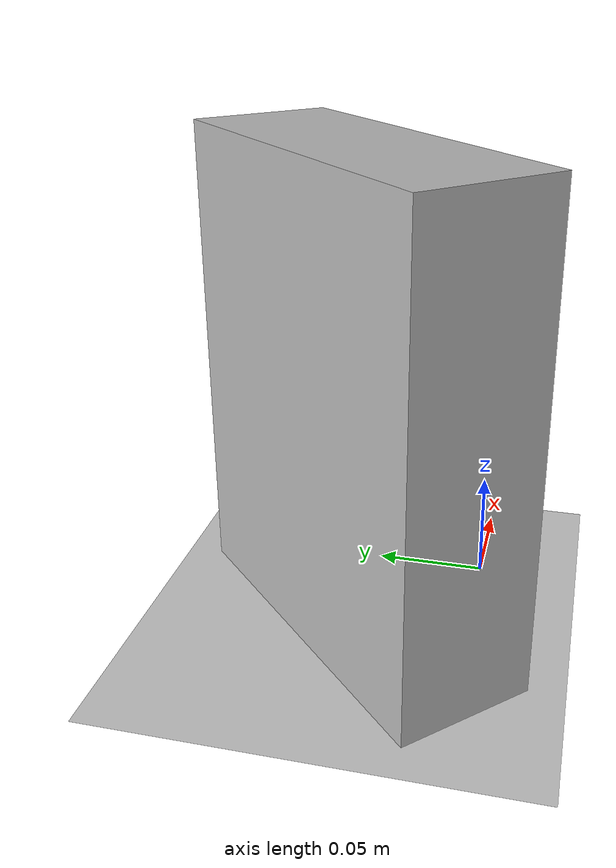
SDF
<?xml version="1.0" ?>
<sdf version="1.6">
    <world name="default">
        <gui>
            <camera name='user_camera'>
                <pose frame=''>0 0 1.02 0 1.5707 1.5707</pose>
                <projection_type>orthographic</projection_type>
            </camera>
        </gui>
        <include>
            <uri>model://ground_plane</uri>
        </include>
        <include>
            <uri>model://sun</uri>
        </include>
        <include>
            <uri>model://cheezits</uri>
            <pose>-0.05 0.05 0 0 0 0.785</pose>
            <name>cheezits_box</name>
        </include>
        <plugin name="collision_map_plugin" filename="libcollision_map_plugin.so"/>
        <physics name="ode" type="ode">
            <real_time_update_rate>1000</real_time_update_rate>
            <ode>
                <solver>
                    <type>quick</type>
                </solver>
                <constraints>
                    <contact_surface_layer>0.002</contact_surface_layer>
                </constraints>
            </ode>
        </physics>
    </world>
</sdf>

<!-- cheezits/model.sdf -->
<sdf version="1.4">
  <model name="cheezits">
    <link name="link_1">
      <pose>0 0 0.10795 0 0 0</pose>
      <gravity>true</gravity>
      <inertial>
        <pose>0 0 0 0 0 0</pose>
        <inertia>
          <ixx>0.42204216666666666</ixx>
          <ixy>0</ixy>
          <ixz>0</ixz>
          <iyy>0.6155901666666667</iyy>
          <iyz>0</iyz>
          <izz>0.2607521666666666</izz>
        </inertia>
        <mass>100</mass>
      </inertial>
      <visual name="visual">
        <cast_shadows>0</cast_shadows>
        <geometry>
          <box>
            <size>0.1651 0.0635 0.2159</size>
          </box>
        </geometry>
      </visual>
      <collision name="box_collision">
        <geometry>
          <box>
            <size>0.1651 0.0635 0.2159</size>
          </box>
        </geometry>
        <surface>
          <friction>
            <ode>
              <mu>0.1</mu>
              <mu2>0.1</mu2>
            </ode>
          </friction>
        </surface>
      </collision>
    </link>
    <static>true</static>
  </model>
</sdf>
